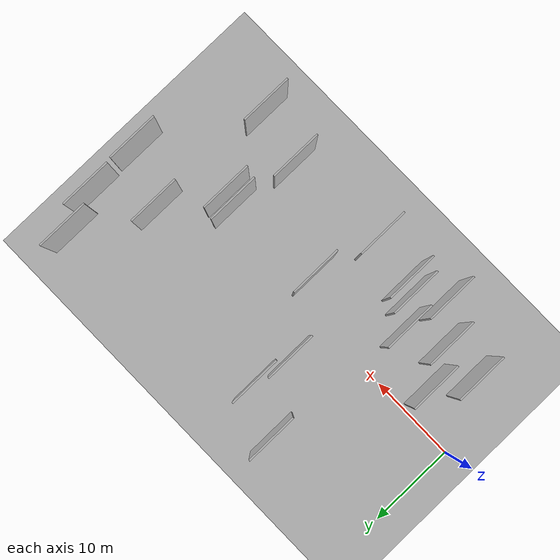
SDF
<?xml version="1.0" encoding="utf-8"?>

<sdf version="1.6">

   <world name="default">

      <gui fullscreen="0">

         <camera name="user_camera">

            <pose>-15 0 4.57585 0 0 0</pose>

            <view_controller>orbit</view_controller>

         </camera>

      </gui>

      <scene>

         <sky>

           <clouds>

             <speed>12</speed>

           </clouds>

         </sky>

         <ambient>0.4 0.4 0.4 1</ambient>

         <background>0.7 0.7 0.7 1</background>

         <shadows>1</shadows>

      </scene>

      <gravity>0 0 -9.8066</gravity>

      <magnetic_field>6e-06 2.3e-05 -4.2e-05</magnetic_field>

      <physics default="0" name="default_physics" type="ode">

         <ode>

            <solver>

               <type>quick</type>

               <iters>10</iters>

               <sor>1.0</sor>

               <use_dynamic_moi_rescaling>0</use_dynamic_moi_rescaling>

            </solver>

            <constraints>

               <cfm>0</cfm>

               <erp>0.2</erp>

               <contact_max_correcting_vel>100</contact_max_correcting_vel>

               <contact_surface_layer>0.001</contact_surface_layer>

            </constraints>

         </ode>

         <max_step_size>0.004</max_step_size>

         <real_time_factor>1</real_time_factor>

         <real_time_update_rate>250</real_time_update_rate>

      </physics>

      <light name="sun" type="directional">

         <cast_shadows>1</cast_shadows>

         <pose>0 0 10 0 0 0</pose>

         <diffuse>0.8 0.8 0.8 1</diffuse>

         <specular>0.2 0.2 0.2 1</specular>

         <attenuation>

            <range>1000</range>

            <constant>0.9</constant>

            <linear>0.01</linear>

            <quadratic>0.001</quadratic>

         </attenuation>

         <direction>-0.5 0.1 -0.9</direction>

      </light>

      <include>

         <name>ground_plane_1</name>

         <uri>model://HANNAS_ground_plane</uri>

         <pose>0 0 0  0 0 0</pose>

      </include>

      <include>

         <name>ground_plane_2</name>

         <uri>model://HANNAS_ground_plane</uri>

         <pose>100 0 0  0 0 0</pose>

      </include>

      <model name="HANNAS_wall_1">

         <static>1</static>

         <pose frame="">35.3472 -2.3064 0.0 0.000000 0.000000 1.570796</pose>

         <link name="link">

            <pose frame="">0 0 3.00 0 0 0</pose>

            <collision name="collision">

               <geometry>

                  <box>

                     <size>6.00 0.2 6.00</size>

                  </box>

               </geometry>

               <max_contacts>10</max_contacts>

               <surface>

                  <contact>

                     <ode/>

                  </contact>

                  <bounce/>

                  <friction>

                     <torsional>

                        <ode/>

                     </torsional>

                     <ode/>

                  </friction>

               </surface>

            </collision>

            <visual name="visual">

               <cast_shadows>0</cast_shadows>

               <geometry>

                  <box>

                     <size>6.00 0.2 6.00</size>

                  </box>

               </geometry>

               <material>

                  <script>

                     <uri>model://HANNAS_wall/materials/scripts</uri>

                     <uri>model://HANNAS_wall/materials/textures</uri>

                     <name>vrc/HANNAS_wall</name>

                  </script>

               </material>

            </visual>

            <self_collide>0</self_collide>

            <enable_wind>0</enable_wind>

            <kinematic>0</kinematic>

         </link>

      </model>

      <model name="HANNAS_wall_2">

         <static>1</static>

         <pose frame="">34.0367 -1.9959 0.0 0.000000 0.000000 1.570796</pose>

         <link name="link">

            <pose frame="">0 0 3.00 0 0 0</pose>

            <collision name="collision">

               <geometry>

                  <box>

                     <size>6.00 0.2 6.00</size>

                  </box>

               </geometry>

               <max_contacts>10</max_contacts>

               <surface>

                  <contact>

                     <ode/>

                  </contact>

                  <bounce/>

                  <friction>

                     <torsional>

                        <ode/>

                     </torsional>

                     <ode/>

                  </friction>

               </surface>

            </collision>

            <visual name="visual">

               <cast_shadows>0</cast_shadows>

               <geometry>

                  <box>

                     <size>6.00 0.2 6.00</size>

                  </box>

               </geometry>

               <material>

                  <script>

                     <uri>model://HANNAS_wall/materials/scripts</uri>

                     <uri>model://HANNAS_wall/materials/textures</uri>

                     <name>vrc/HANNAS_wall</name>

                  </script>

               </material>

            </visual>

            <self_collide>0</self_collide>

            <enable_wind>0</enable_wind>

            <kinematic>0</kinematic>

         </link>

      </model>

      <model name="HANNAS_wall_3">

         <static>1</static>

         <pose frame="">45.4234 0.9373 0.0 0.000000 0.000000 1.570796</pose>

         <link name="link">

            <pose frame="">0 0 3.00 0 0 0</pose>

            <collision name="collision">

               <geometry>

                  <box>

                     <size>6.00 0.2 6.00</size>

                  </box>

               </geometry>

               <max_contacts>10</max_contacts>

               <surface>

                  <contact>

                     <ode/>

                  </contact>

                  <bounce/>

                  <friction>

                     <torsional>

                        <ode/>

                     </torsional>

                     <ode/>

                  </friction>

               </surface>

            </collision>

            <visual name="visual">

               <cast_shadows>0</cast_shadows>

               <geometry>

                  <box>

                     <size>6.00 0.2 6.00</size>

                  </box>

               </geometry>

               <material>

                  <script>

                     <uri>model://HANNAS_wall/materials/scripts</uri>

                     <uri>model://HANNAS_wall/materials/textures</uri>

                     <name>vrc/HANNAS_wall</name>

                  </script>

               </material>

            </visual>

            <self_collide>0</self_collide>

            <enable_wind>0</enable_wind>

            <kinematic>0</kinematic>

         </link>

      </model>

      <model name="HANNAS_wall_4">

         <static>1</static>

         <pose frame="">21.2194 -10.2965 0.0 0.000000 0.000000 1.570796</pose>

         <link name="link">

            <pose frame="">0 0 3.00 0 0 0</pose>

            <collision name="collision">

               <geometry>

                  <box>

                     <size>6.00 0.2 6.00</size>

                  </box>

               </geometry>

               <max_contacts>10</max_contacts>

               <surface>

                  <contact>

                     <ode/>

                  </contact>

                  <bounce/>

                  <friction>

                     <torsional>

                        <ode/>

                     </torsional>

                     <ode/>

                  </friction>

               </surface>

            </collision>

            <visual name="visual">

               <cast_shadows>0</cast_shadows>

               <geometry>

                  <box>

                     <size>6.00 0.2 6.00</size>

                  </box>

               </geometry>

               <material>

                  <script>

                     <uri>model://HANNAS_wall/materials/scripts</uri>

                     <uri>model://HANNAS_wall/materials/textures</uri>

                     <name>vrc/HANNAS_wall</name>

                  </script>

               </material>

            </visual>

            <self_collide>0</self_collide>

            <enable_wind>0</enable_wind>

            <kinematic>0</kinematic>

         </link>

      </model>

      <model name="HANNAS_wall_5">

         <static>1</static>

         <pose frame="">39.3652 3.7793 0.0 0.000000 0.000000 1.570796</pose>

         <link name="link">

            <pose frame="">0 0 3.00 0 0 0</pose>

            <collision name="collision">

               <geometry>

                  <box>

                     <size>6.00 0.2 6.00</size>

                  </box>

               </geometry>

               <max_contacts>10</max_contacts>

               <surface>

                  <contact>

                     <ode/>

                  </contact>

                  <bounce/>

                  <friction>

                     <torsional>

                        <ode/>

                     </torsional>

                     <ode/>

                  </friction>

               </surface>

            </collision>

            <visual name="visual">

               <cast_shadows>0</cast_shadows>

               <geometry>

                  <box>

                     <size>6.00 0.2 6.00</size>

                  </box>

               </geometry>

               <material>

                  <script>

                     <uri>model://HANNAS_wall/materials/scripts</uri>

                     <uri>model://HANNAS_wall/materials/textures</uri>

                     <name>vrc/HANNAS_wall</name>

                  </script>

               </material>

            </visual>

            <self_collide>0</self_collide>

            <enable_wind>0</enable_wind>

            <kinematic>0</kinematic>

         </link>

      </model>

      <model name="HANNAS_wall_6">

         <static>1</static>

         <pose frame="">18.7941 4.7931 0.0 0.000000 0.000000 1.570796</pose>

         <link name="link">

            <pose frame="">0 0 3.00 0 0 0</pose>

            <collision name="collision">

               <geometry>

                  <box>

                     <size>6.00 0.2 6.00</size>

                  </box>

               </geometry>

               <max_contacts>10</max_contacts>

               <surface>

                  <contact>

                     <ode/>

                  </contact>

                  <bounce/>

                  <friction>

                     <torsional>

                        <ode/>

                     </torsional>

                     <ode/>

                  </friction>

               </surface>

            </collision>

            <visual name="visual">

               <cast_shadows>0</cast_shadows>

               <geometry>

                  <box>

                     <size>6.00 0.2 6.00</size>

                  </box>

               </geometry>

               <material>

                  <script>

                     <uri>model://HANNAS_wall/materials/scripts</uri>

                     <uri>model://HANNAS_wall/materials/textures</uri>

                     <name>vrc/HANNAS_wall</name>

                  </script>

               </material>

            </visual>

            <self_collide>0</self_collide>

            <enable_wind>0</enable_wind>

            <kinematic>0</kinematic>

         </link>

      </model>

      <model name="HANNAS_wall_7">

         <static>1</static>

         <pose frame="">14.7638 -8.5212 0.0 0.000000 0.000000 1.570796</pose>

         <link name="link">

            <pose frame="">0 0 3.00 0 0 0</pose>

            <collision name="collision">

               <geometry>

                  <box>

                     <size>6.00 0.2 6.00</size>

                  </box>

               </geometry>

               <max_contacts>10</max_contacts>

               <surface>

                  <contact>

                     <ode/>

                  </contact>

                  <bounce/>

                  <friction>

                     <torsional>

                        <ode/>

                     </torsional>

                     <ode/>

                  </friction>

               </surface>

            </collision>

            <visual name="visual">

               <cast_shadows>0</cast_shadows>

               <geometry>

                  <box>

                     <size>6.00 0.2 6.00</size>

                  </box>

               </geometry>

               <material>

                  <script>

                     <uri>model://HANNAS_wall/materials/scripts</uri>

                     <uri>model://HANNAS_wall/materials/textures</uri>

                     <name>vrc/HANNAS_wall</name>

                  </script>

               </material>

            </visual>

            <self_collide>0</self_collide>

            <enable_wind>0</enable_wind>

            <kinematic>0</kinematic>

         </link>

      </model>

      <model name="HANNAS_wall_8">

         <static>1</static>

         <pose frame="">16.1042 -9.3140 0.0 0.000000 0.000000 1.570796</pose>

         <link name="link">

            <pose frame="">0 0 3.00 0 0 0</pose>

            <collision name="collision">

               <geometry>

                  <box>

                     <size>6.00 0.2 6.00</size>

                  </box>

               </geometry>

               <max_contacts>10</max_contacts>

               <surface>

                  <contact>

                     <ode/>

                  </contact>

                  <bounce/>

                  <friction>

                     <torsional>

                        <ode/>

                     </torsional>

                     <ode/>

                  </friction>

               </surface>

            </collision>

            <visual name="visual">

               <cast_shadows>0</cast_shadows>

               <geometry>

                  <box>

                     <size>6.00 0.2 6.00</size>

                  </box>

               </geometry>

               <material>

                  <script>

                     <uri>model://HANNAS_wall/materials/scripts</uri>

                     <uri>model://HANNAS_wall/materials/textures</uri>

                     <name>vrc/HANNAS_wall</name>

                  </script>

               </material>

            </visual>

            <self_collide>0</self_collide>

            <enable_wind>0</enable_wind>

            <kinematic>0</kinematic>

         </link>

      </model>

      <model name="HANNAS_wall_9">

         <static>1</static>

         <pose frame="">45.2778 7.4596 0.0 0.000000 0.000000 1.570796</pose>

         <link name="link">

            <pose frame="">0 0 3.00 0 0 0</pose>

            <collision name="collision">

               <geometry>

                  <box>

                     <size>6.00 0.2 6.00</size>

                  </box>

               </geometry>

               <max_contacts>10</max_contacts>

               <surface>

                  <contact>

                     <ode/>

                  </contact>

                  <bounce/>

                  <friction>

                     <torsional>

                        <ode/>

                     </torsional>

                     <ode/>

                  </friction>

               </surface>

            </collision>

            <visual name="visual">

               <cast_shadows>0</cast_shadows>

               <geometry>

                  <box>

                     <size>6.00 0.2 6.00</size>

                  </box>

               </geometry>

               <material>

                  <script>

                     <uri>model://HANNAS_wall/materials/scripts</uri>

                     <uri>model://HANNAS_wall/materials/textures</uri>

                     <name>vrc/HANNAS_wall</name>

                  </script>

               </material>

            </visual>

            <self_collide>0</self_collide>

            <enable_wind>0</enable_wind>

            <kinematic>0</kinematic>

         </link>

      </model>

      <model name="HANNAS_wall_10">

         <static>1</static>

         <pose frame="">23.1139 -2.8702 0.0 0.000000 0.000000 1.570796</pose>

         <link name="link">

            <pose frame="">0 0 3.00 0 0 0</pose>

            <collision name="collision">

               <geometry>

                  <box>

                     <size>6.00 0.2 6.00</size>

                  </box>

               </geometry>

               <max_contacts>10</max_contacts>

               <surface>

                  <contact>

                     <ode/>

                  </contact>

                  <bounce/>

                  <friction>

                     <torsional>

                        <ode/>

                     </torsional>

                     <ode/>

                  </friction>

               </surface>

            </collision>

            <visual name="visual">

               <cast_shadows>0</cast_shadows>

               <geometry>

                  <box>

                     <size>6.00 0.2 6.00</size>

                  </box>

               </geometry>

               <material>

                  <script>

                     <uri>model://HANNAS_wall/materials/scripts</uri>

                     <uri>model://HANNAS_wall/materials/textures</uri>

                     <name>vrc/HANNAS_wall</name>

                  </script>

               </material>

            </visual>

            <self_collide>0</self_collide>

            <enable_wind>0</enable_wind>

            <kinematic>0</kinematic>

         </link>

      </model>

      <model name="HANNAS_wall_11">

         <static>1</static>

         <pose frame="">32.7756 -9.4854 0.0 0.000000 0.000000 1.570796</pose>

         <link name="link">

            <pose frame="">0 0 3.00 0 0 0</pose>

            <collision name="collision">

               <geometry>

                  <box>

                     <size>6.00 0.2 6.00</size>

                  </box>

               </geometry>

               <max_contacts>10</max_contacts>

               <surface>

                  <contact>

                     <ode/>

                  </contact>

                  <bounce/>

                  <friction>

                     <torsional>

                        <ode/>

                     </torsional>

                     <ode/>

                  </friction>

               </surface>

            </collision>

            <visual name="visual">

               <cast_shadows>0</cast_shadows>

               <geometry>

                  <box>

                     <size>6.00 0.2 6.00</size>

                  </box>

               </geometry>

               <material>

                  <script>

                     <uri>model://HANNAS_wall/materials/scripts</uri>

                     <uri>model://HANNAS_wall/materials/textures</uri>

                     <name>vrc/HANNAS_wall</name>

                  </script>

               </material>

            </visual>

            <self_collide>0</self_collide>

            <enable_wind>0</enable_wind>

            <kinematic>0</kinematic>

         </link>

      </model>

      <model name="HANNAS_wall_12">

         <static>1</static>

         <pose frame="">4.2209 -7.2209 0.0 0.000000 0.000000 1.570796</pose>

         <link name="link">

            <pose frame="">0 0 3.00 0 0 0</pose>

            <collision name="collision">

               <geometry>

                  <box>

                     <size>6.00 0.2 6.00</size>

                  </box>

               </geometry>

               <max_contacts>10</max_contacts>

               <surface>

                  <contact>

                     <ode/>

                  </contact>

                  <bounce/>

                  <friction>

                     <torsional>

                        <ode/>

                     </torsional>

                     <ode/>

                  </friction>

               </surface>

            </collision>

            <visual name="visual">

               <cast_shadows>0</cast_shadows>

               <geometry>

                  <box>

                     <size>6.00 0.2 6.00</size>

                  </box>

               </geometry>

               <material>

                  <script>

                     <uri>model://HANNAS_wall/materials/scripts</uri>

                     <uri>model://HANNAS_wall/materials/textures</uri>

                     <name>vrc/HANNAS_wall</name>

                  </script>

               </material>

            </visual>

            <self_collide>0</self_collide>

            <enable_wind>0</enable_wind>

            <kinematic>0</kinematic>

         </link>

      </model>

      <model name="HANNAS_wall_13">

         <static>1</static>

         <pose frame="">14.3306 11.6972 0.0 0.000000 0.000000 1.570796</pose>

         <link name="link">

            <pose frame="">0 0 3.00 0 0 0</pose>

            <collision name="collision">

               <geometry>

                  <box>

                     <size>6.00 0.2 6.00</size>

                  </box>

               </geometry>

               <max_contacts>10</max_contacts>

               <surface>

                  <contact>

                     <ode/>

                  </contact>

                  <bounce/>

                  <friction>

                     <torsional>

                        <ode/>

                     </torsional>

                     <ode/>

                  </friction>

               </surface>

            </collision>

            <visual name="visual">

               <cast_shadows>0</cast_shadows>

               <geometry>

                  <box>

                     <size>6.00 0.2 6.00</size>

                  </box>

               </geometry>

               <material>

                  <script>

                     <uri>model://HANNAS_wall/materials/scripts</uri>

                     <uri>model://HANNAS_wall/materials/textures</uri>

                     <name>vrc/HANNAS_wall</name>

                  </script>

               </material>

            </visual>

            <self_collide>0</self_collide>

            <enable_wind>0</enable_wind>

            <kinematic>0</kinematic>

         </link>

      </model>

      <model name="HANNAS_wall_14">

         <static>1</static>

         <pose frame="">11.8856 -10.7155 0.0 0.000000 0.000000 1.570796</pose>

         <link name="link">

            <pose frame="">0 0 3.00 0 0 0</pose>

            <collision name="collision">

               <geometry>

                  <box>

                     <size>6.00 0.2 6.00</size>

                  </box>

               </geometry>

               <max_contacts>10</max_contacts>

               <surface>

                  <contact>

                     <ode/>

                  </contact>

                  <bounce/>

                  <friction>

                     <torsional>

                        <ode/>

                     </torsional>

                     <ode/>

                  </friction>

               </surface>

            </collision>

            <visual name="visual">

               <cast_shadows>0</cast_shadows>

               <geometry>

                  <box>

                     <size>6.00 0.2 6.00</size>

                  </box>

               </geometry>

               <material>

                  <script>

                     <uri>model://HANNAS_wall/materials/scripts</uri>

                     <uri>model://HANNAS_wall/materials/textures</uri>

                     <name>vrc/HANNAS_wall</name>

                  </script>

               </material>

            </visual>

            <self_collide>0</self_collide>

            <enable_wind>0</enable_wind>

            <kinematic>0</kinematic>

         </link>

      </model>

      <model name="HANNAS_wall_15">

         <static>1</static>

         <pose frame="">6.7042 -3.4060 0.0 0.000000 0.000000 1.570796</pose>

         <link name="link">

            <pose frame="">0 0 3.00 0 0 0</pose>

            <collision name="collision">

               <geometry>

                  <box>

                     <size>6.00 0.2 6.00</size>

                  </box>

               </geometry>

               <max_contacts>10</max_contacts>

               <surface>

                  <contact>

                     <ode/>

                  </contact>

                  <bounce/>

                  <friction>

                     <torsional>

                        <ode/>

                     </torsional>

                     <ode/>

                  </friction>

               </surface>

            </collision>

            <visual name="visual">

               <cast_shadows>0</cast_shadows>

               <geometry>

                  <box>

                     <size>6.00 0.2 6.00</size>

                  </box>

               </geometry>

               <material>

                  <script>

                     <uri>model://HANNAS_wall/materials/scripts</uri>

                     <uri>model://HANNAS_wall/materials/textures</uri>

                     <name>vrc/HANNAS_wall</name>

                  </script>

               </material>

            </visual>

            <self_collide>0</self_collide>

            <enable_wind>0</enable_wind>

            <kinematic>0</kinematic>

         </link>

      </model>

      <model name="HANNAS_wall_16">

         <static>1</static>

         <pose frame="">38.8877 -11.3032 0.0 0.000000 0.000000 1.570796</pose>

         <link name="link">

            <pose frame="">0 0 3.00 0 0 0</pose>

            <collision name="collision">

               <geometry>

                  <box>

                     <size>6.00 0.2 6.00</size>

                  </box>

               </geometry>

               <max_contacts>10</max_contacts>

               <surface>

                  <contact>

                     <ode/>

                  </contact>

                  <bounce/>

                  <friction>

                     <torsional>

                        <ode/>

                     </torsional>

                     <ode/>

                  </friction>

               </surface>

            </collision>

            <visual name="visual">

               <cast_shadows>0</cast_shadows>

               <geometry>

                  <box>

                     <size>6.00 0.2 6.00</size>

                  </box>

               </geometry>

               <material>

                  <script>

                     <uri>model://HANNAS_wall/materials/scripts</uri>

                     <uri>model://HANNAS_wall/materials/textures</uri>

                     <name>vrc/HANNAS_wall</name>

                  </script>

               </material>

            </visual>

            <self_collide>0</self_collide>

            <enable_wind>0</enable_wind>

            <kinematic>0</kinematic>

         </link>

      </model>

      <model name="HANNAS_wall_17">

         <static>1</static>

         <pose frame="">8.7109 -7.5274 0.0 0.000000 0.000000 1.570796</pose>

         <link name="link">

            <pose frame="">0 0 3.00 0 0 0</pose>

            <collision name="collision">

               <geometry>

                  <box>

                     <size>6.00 0.2 6.00</size>

                  </box>

               </geometry>

               <max_contacts>10</max_contacts>

               <surface>

                  <contact>

                     <ode/>

                  </contact>

                  <bounce/>

                  <friction>

                     <torsional>

                        <ode/>

                     </torsional>

                     <ode/>

                  </friction>

               </surface>

            </collision>

            <visual name="visual">

               <cast_shadows>0</cast_shadows>

               <geometry>

                  <box>

                     <size>6.00 0.2 6.00</size>

                  </box>

               </geometry>

               <material>

                  <script>

                     <uri>model://HANNAS_wall/materials/scripts</uri>

                     <uri>model://HANNAS_wall/materials/textures</uri>

                     <name>vrc/HANNAS_wall</name>

                  </script>

               </material>

            </visual>

            <self_collide>0</self_collide>

            <enable_wind>0</enable_wind>

            <kinematic>0</kinematic>

         </link>

      </model>

      <model name="HANNAS_wall_18">

         <static>1</static>

         <pose frame="">43.8720 11.9253 0.0 0.000000 0.000000 1.570796</pose>

         <link name="link">

            <pose frame="">0 0 3.00 0 0 0</pose>

            <collision name="collision">

               <geometry>

                  <box>

                     <size>6.00 0.2 6.00</size>

                  </box>

               </geometry>

               <max_contacts>10</max_contacts>

               <surface>

                  <contact>

                     <ode/>

                  </contact>

                  <bounce/>

                  <friction>

                     <torsional>

                        <ode/>

                     </torsional>

                     <ode/>

                  </friction>

               </surface>

            </collision>

            <visual name="visual">

               <cast_shadows>0</cast_shadows>

               <geometry>

                  <box>

                     <size>6.00 0.2 6.00</size>

                  </box>

               </geometry>

               <material>

                  <script>

                     <uri>model://HANNAS_wall/materials/scripts</uri>

                     <uri>model://HANNAS_wall/materials/textures</uri>

                     <name>vrc/HANNAS_wall</name>

                  </script>

               </material>

            </visual>

            <self_collide>0</self_collide>

            <enable_wind>0</enable_wind>

            <kinematic>0</kinematic>

         </link>

      </model>

      <model name="HANNAS_wall_19">

         <static>1</static>

         <pose frame="">12.7504 -5.7486 0.0 0.000000 0.000000 1.570796</pose>

         <link name="link">

            <pose frame="">0 0 3.00 0 0 0</pose>

            <collision name="collision">

               <geometry>

                  <box>

                     <size>6.00 0.2 6.00</size>

                  </box>

               </geometry>

               <max_contacts>10</max_contacts>

               <surface>

                  <contact>

                     <ode/>

                  </contact>

                  <bounce/>

                  <friction>

                     <torsional>

                        <ode/>

                     </torsional>

                     <ode/>

                  </friction>

               </surface>

            </collision>

            <visual name="visual">

               <cast_shadows>0</cast_shadows>

               <geometry>

                  <box>

                     <size>6.00 0.2 6.00</size>

                  </box>

               </geometry>

               <material>

                  <script>

                     <uri>model://HANNAS_wall/materials/scripts</uri>

                     <uri>model://HANNAS_wall/materials/textures</uri>

                     <name>vrc/HANNAS_wall</name>

                  </script>

               </material>

            </visual>

            <self_collide>0</self_collide>

            <enable_wind>0</enable_wind>

            <kinematic>0</kinematic>

         </link>

      </model>

      <model name="HANNAS_wall_20">

         <static>1</static>

         <pose frame="">19.4979 9.0149 0.0 0.000000 0.000000 1.570796</pose>

         <link name="link">

            <pose frame="">0 0 3.00 0 0 0</pose>

            <collision name="collision">

               <geometry>

                  <box>

                     <size>6.00 0.2 6.00</size>

                  </box>

               </geometry>

               <max_contacts>10</max_contacts>

               <surface>

                  <contact>

                     <ode/>

                  </contact>

                  <bounce/>

                  <friction>

                     <torsional>

                        <ode/>

                     </torsional>

                     <ode/>

                  </friction>

               </surface>

            </collision>

            <visual name="visual">

               <cast_shadows>0</cast_shadows>

               <geometry>

                  <box>

                     <size>6.00 0.2 6.00</size>

                  </box>

               </geometry>

               <material>

                  <script>

                     <uri>model://HANNAS_wall/materials/scripts</uri>

                     <uri>model://HANNAS_wall/materials/textures</uri>

                     <name>vrc/HANNAS_wall</name>

                  </script>

               </material>

            </visual>

            <self_collide>0</self_collide>

            <enable_wind>0</enable_wind>

            <kinematic>0</kinematic>

         </link>

      </model>

   </world>

</sdf>

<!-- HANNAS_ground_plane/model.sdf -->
<sdf version="1.4">
<model name="HANNAS_ground_plane">
  <static>true</static>
    <link name="link">
      <collision name="collision">
        <geometry>
          <plane>
            <normal>0 0 1</normal>
            <size>1000 1000</size>
          </plane>
        </geometry>
        <surface>
          <friction>
            <ode>
              <mu>100</mu>
              <mu2>50</mu2>
            </ode>
          </friction>
        </surface>
      </collision>
      <visual name="visual">
        <cast_shadows>false</cast_shadows>
        <geometry>
          <plane>
            <normal>0 0 1</normal>
            <size>1000 1000</size>
          </plane>
        </geometry>
        <material>
          <script>
            <uri>model://HANNAS_ground_plane/materials/scripts/HANNAS_ground_plane.material</uri>
	    <uri>model://HANNAS_ground_plane/materials/textures</uri>
            <name>HANNASGroundPlane/Image</name>
          </script>
        </material>
      </visual>
    </link>
  </model>
</sdf>
